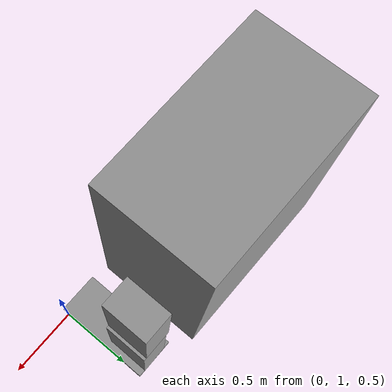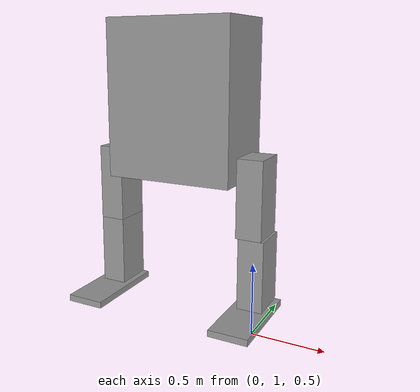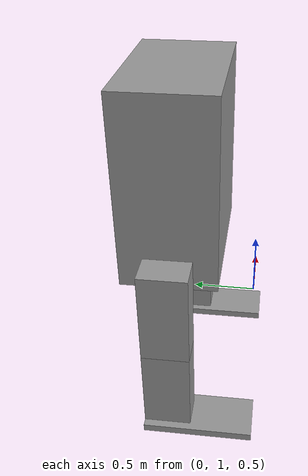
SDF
<?xml version='1.0'?>
<sdf version='1.6'>
  <model name='HumanoidRobot'>
    <link name='link_0'>
      <pose frame=''>-0.773711 1.48908 2.03333 0 -0 0</pose>
      <inertial>
        <mass>1</mass>
        <inertia>
          <ixx>0.166667</ixx>
          <ixy>0</ixy>
          <ixz>0</ixz>
          <iyy>0.166667</iyy>
          <iyz>0</iyz>
          <izz>0.166667</izz>
        </inertia>
        <pose frame=''>0 0 0 0 -0 0</pose>
      </inertial>
      <gravity>1</gravity>
      <self_collide>0</self_collide>
      <kinematic>0</kinematic>
      <visual name='visual'>
        <pose frame=''>0 0 0 0 -0 0</pose>
        <geometry>
          <box>
            <size>1 0.6 1.2</size>
          </box>
        </geometry>
        <material>
          <lighting>1</lighting>
          <script>
            <uri>file://media/materials/scripts/gazebo.material</uri>
            <name>Gazebo/Grey</name>
          </script>
          <shader type='pixel'>
            <normal_map>__default__</normal_map>
          </shader>
          <ambient>0.3 0.3 0.3 1</ambient>
          <diffuse>0.7 0.7 0.7 1</diffuse>
          <specular>0.01 0.01 0.01 1</specular>
          <emissive>0 0 0 1</emissive>
        </material>
        <transparency>0</transparency>
        <cast_shadows>1</cast_shadows>
      </visual>
      <collision name='collision'>
        <laser_retro>0</laser_retro>
        <max_contacts>10</max_contacts>
        <pose frame=''>0 0 0 0 -0 0</pose>
        <geometry>
          <box>
            <size>1 0.6 1.2</size>
          </box>
        </geometry>
        <surface>
          <friction>
            <ode>
              <mu>1</mu>
              <mu2>1</mu2>
              <fdir1>0 0 0</fdir1>
              <slip1>0</slip1>
              <slip2>0</slip2>
            </ode>
            <torsional>
              <coefficient>1</coefficient>
              <patch_radius>0</patch_radius>
              <surface_radius>0</surface_radius>
              <use_patch_radius>1</use_patch_radius>
              <ode>
                <slip>0</slip>
              </ode>
            </torsional>
          </friction>
          <bounce>
            <restitution_coefficient>0</restitution_coefficient>
            <threshold>1e+06</threshold>
          </bounce>
          <contact>
            <collide_without_contact>0</collide_without_contact>
            <collide_without_contact_bitmask>1</collide_without_contact_bitmask>
            <collide_bitmask>1</collide_bitmask>
            <ode>
              <soft_cfm>0</soft_cfm>
              <soft_erp>0.2</soft_erp>
              <kp>1e+13</kp>
              <kd>1</kd>
              <max_vel>0.01</max_vel>
              <min_depth>0</min_depth>
            </ode>
            <bullet>
              <split_impulse>1</split_impulse>
              <split_impulse_penetration_threshold>-0.01</split_impulse_penetration_threshold>
              <soft_cfm>0</soft_cfm>
              <soft_erp>0.2</soft_erp>
              <kp>1e+13</kp>
              <kd>1</kd>
            </bullet>
          </contact>
        </surface>
      </collision>
    </link>
    <link name='link_1'>
      <pose frame=''>-0.173711 1.48908 1.33333 0 -0 0</pose>
      <inertial>
        <mass>1</mass>
        <inertia>
          <ixx>0.166667</ixx>
          <ixy>0</ixy>
          <ixz>0</ixz>
          <iyy>0.166667</iyy>
          <iyz>0</iyz>
          <izz>0.166667</izz>
        </inertia>
        <pose frame=''>0 0 0 0 -0 0</pose>
      </inertial>
      <gravity>1</gravity>
      <self_collide>0</self_collide>
      <kinematic>0</kinematic>
      <visual name='visual'>
        <pose frame=''>0 0 0 0 -0 0</pose>
        <geometry>
          <box>
            <size>0.2 0.3 0.6</size>
          </box>
        </geometry>
        <material>
          <lighting>1</lighting>
          <script>
            <uri>file://media/materials/scripts/gazebo.material</uri>
            <name>Gazebo/Grey</name>
          </script>
          <shader type='pixel'>
            <normal_map>__default__</normal_map>
          </shader>
          <ambient>0.3 0.3 0.3 1</ambient>
          <diffuse>0.7 0.7 0.7 1</diffuse>
          <specular>0.01 0.01 0.01 1</specular>
          <emissive>0 0 0 1</emissive>
        </material>
        <transparency>0</transparency>
        <cast_shadows>1</cast_shadows>
      </visual>
      <collision name='collision'>
        <laser_retro>0</laser_retro>
        <max_contacts>10</max_contacts>
        <pose frame=''>0 0 0 0 -0 0</pose>
        <geometry>
          <box>
            <size>0.2 0.3 0.6</size>
          </box>
        </geometry>
        <surface>
          <friction>
            <ode>
              <mu>1</mu>
              <mu2>1</mu2>
              <fdir1>0 0 0</fdir1>
              <slip1>0</slip1>
              <slip2>0</slip2>
            </ode>
            <torsional>
              <coefficient>1</coefficient>
              <patch_radius>0</patch_radius>
              <surface_radius>0</surface_radius>
              <use_patch_radius>1</use_patch_radius>
              <ode>
                <slip>0</slip>
              </ode>
            </torsional>
          </friction>
          <bounce>
            <restitution_coefficient>0</restitution_coefficient>
            <threshold>1e+06</threshold>
          </bounce>
          <contact>
            <collide_without_contact>0</collide_without_contact>
            <collide_without_contact_bitmask>1</collide_without_contact_bitmask>
            <collide_bitmask>1</collide_bitmask>
            <ode>
              <soft_cfm>0</soft_cfm>
              <soft_erp>0.2</soft_erp>
              <kp>1e+13</kp>
              <kd>1</kd>
              <max_vel>0.01</max_vel>
              <min_depth>0</min_depth>
            </ode>
            <bullet>
              <split_impulse>1</split_impulse>
              <split_impulse_penetration_threshold>-0.01</split_impulse_penetration_threshold>
              <soft_cfm>0</soft_cfm>
              <soft_erp>0.2</soft_erp>
              <kp>1e+13</kp>
              <kd>1</kd>
            </bullet>
          </contact>
        </surface>
      </collision>
    </link>
    <link name='link_1_clone'>
      <pose frame=''>-1.37371 1.48908 1.33333 0 -0 0</pose>
      <inertial>
        <mass>1</mass>
        <inertia>
          <ixx>0.166667</ixx>
          <ixy>0</ixy>
          <ixz>0</ixz>
          <iyy>0.166667</iyy>
          <iyz>0</iyz>
          <izz>0.166667</izz>
        </inertia>
        <pose frame=''>0 0 0 0 -0 0</pose>
      </inertial>
      <self_collide>0</self_collide>
      <kinematic>0</kinematic>
      <visual name='visual'>
        <pose frame=''>0 0 0 0 -0 0</pose>
        <geometry>
          <box>
            <size>0.2 0.3 0.6</size>
          </box>
        </geometry>
        <material>
          <lighting>1</lighting>
          <script>
            <uri>file://media/materials/scripts/gazebo.material</uri>
            <name>Gazebo/Grey</name>
          </script>
          <shader type='pixel'>
            <normal_map>__default__</normal_map>
          </shader>
          <ambient>0.3 0.3 0.3 1</ambient>
          <diffuse>0.7 0.7 0.7 1</diffuse>
          <specular>0.01 0.01 0.01 1</specular>
          <emissive>0 0 0 1</emissive>
        </material>
        <transparency>0</transparency>
        <cast_shadows>1</cast_shadows>
      </visual>
      <collision name='collision'>
        <laser_retro>0</laser_retro>
        <max_contacts>10</max_contacts>
        <pose frame=''>0 0 0 0 -0 0</pose>
        <geometry>
          <box>
            <size>0.2 0.3 0.6</size>
          </box>
        </geometry>
        <surface>
          <friction>
            <ode>
              <mu>1</mu>
              <mu2>1</mu2>
              <fdir1>0 0 0</fdir1>
              <slip1>0</slip1>
              <slip2>0</slip2>
            </ode>
            <torsional>
              <coefficient>1</coefficient>
              <patch_radius>0</patch_radius>
              <surface_radius>0</surface_radius>
              <use_patch_radius>1</use_patch_radius>
              <ode>
                <slip>0</slip>
              </ode>
            </torsional>
          </friction>
          <bounce>
            <restitution_coefficient>0</restitution_coefficient>
            <threshold>1e+06</threshold>
          </bounce>
          <contact>
            <collide_without_contact>0</collide_without_contact>
            <collide_without_contact_bitmask>1</collide_without_contact_bitmask>
            <collide_bitmask>1</collide_bitmask>
            <ode>
              <soft_cfm>0</soft_cfm>
              <soft_erp>0.2</soft_erp>
              <kp>1e+13</kp>
              <kd>1</kd>
              <max_vel>0.01</max_vel>
              <min_depth>0</min_depth>
            </ode>
            <bullet>
              <split_impulse>1</split_impulse>
              <split_impulse_penetration_threshold>-0.01</split_impulse_penetration_threshold>
              <soft_cfm>0</soft_cfm>
              <soft_erp>0.2</soft_erp>
              <kp>1e+13</kp>
              <kd>1</kd>
            </bullet>
          </contact>
        </surface>
      </collision>
    </link>
    <link name='link_1_clone_0'>
      <pose frame=''>-0.15371 1.48908 0.733332 0 -0 0</pose>
      <inertial>
        <mass>1</mass>
        <inertia>
          <ixx>0.166667</ixx>
          <ixy>0</ixy>
          <ixz>0</ixz>
          <iyy>0.166667</iyy>
          <iyz>0</iyz>
          <izz>0.166667</izz>
        </inertia>
        <pose frame=''>0 0 0 0 -0 0</pose>
      </inertial>
      <self_collide>0</self_collide>
      <kinematic>0</kinematic>
      <visual name='visual'>
        <pose frame=''>0 0 0 0 -0 0</pose>
        <geometry>
          <box>
            <size>0.2 0.3 0.6</size>
          </box>
        </geometry>
        <material>
          <lighting>1</lighting>
          <script>
            <uri>file://media/materials/scripts/gazebo.material</uri>
            <name>Gazebo/Grey</name>
          </script>
          <shader type='pixel'>
            <normal_map>__default__</normal_map>
          </shader>
          <ambient>0.3 0.3 0.3 1</ambient>
          <diffuse>0.7 0.7 0.7 1</diffuse>
          <specular>0.01 0.01 0.01 1</specular>
          <emissive>0 0 0 1</emissive>
        </material>
        <transparency>0</transparency>
        <cast_shadows>1</cast_shadows>
      </visual>
      <collision name='collision'>
        <laser_retro>0</laser_retro>
        <max_contacts>10</max_contacts>
        <pose frame=''>0 0 0 0 -0 0</pose>
        <geometry>
          <box>
            <size>0.2 0.3 0.6</size>
          </box>
        </geometry>
        <surface>
          <friction>
            <ode>
              <mu>1</mu>
              <mu2>1</mu2>
              <fdir1>0 0 0</fdir1>
              <slip1>0</slip1>
              <slip2>0</slip2>
            </ode>
            <torsional>
              <coefficient>1</coefficient>
              <patch_radius>0</patch_radius>
              <surface_radius>0</surface_radius>
              <use_patch_radius>1</use_patch_radius>
              <ode>
                <slip>0</slip>
              </ode>
            </torsional>
          </friction>
          <bounce>
            <restitution_coefficient>0</restitution_coefficient>
            <threshold>1e+06</threshold>
          </bounce>
          <contact>
            <collide_without_contact>0</collide_without_contact>
            <collide_without_contact_bitmask>1</collide_without_contact_bitmask>
            <collide_bitmask>1</collide_bitmask>
            <ode>
              <soft_cfm>0</soft_cfm>
              <soft_erp>0.2</soft_erp>
              <kp>1e+13</kp>
              <kd>1</kd>
              <max_vel>0.01</max_vel>
              <min_depth>0</min_depth>
            </ode>
            <bullet>
              <split_impulse>1</split_impulse>
              <split_impulse_penetration_threshold>-0.01</split_impulse_penetration_threshold>
              <soft_cfm>0</soft_cfm>
              <soft_erp>0.2</soft_erp>
              <kp>1e+13</kp>
              <kd>1</kd>
            </bullet>
          </contact>
        </surface>
      </collision>
    </link>
    <link name='link_1_clone_1'>
      <pose frame=''>-1.37371 1.48908 0.733332 0 -0 0</pose>
      <inertial>
        <mass>1</mass>
        <inertia>
          <ixx>0.166667</ixx>
          <ixy>0</ixy>
          <ixz>0</ixz>
          <iyy>0.166667</iyy>
          <iyz>0</iyz>
          <izz>0.166667</izz>
        </inertia>
        <pose frame=''>0 0 0 0 -0 0</pose>
      </inertial>
      <self_collide>0</self_collide>
      <kinematic>0</kinematic>
      <gravity>1</gravity>
      <visual name='visual'>
        <pose frame=''>0 0 0 0 -0 0</pose>
        <geometry>
          <box>
            <size>0.2 0.3 0.6</size>
          </box>
        </geometry>
        <material>
          <lighting>1</lighting>
          <script>
            <uri>file://media/materials/scripts/gazebo.material</uri>
            <name>Gazebo/Grey</name>
          </script>
          <shader type='pixel'>
            <normal_map>__default__</normal_map>
          </shader>
          <ambient>0.3 0.3 0.3 1</ambient>
          <diffuse>0.7 0.7 0.7 1</diffuse>
          <specular>0.01 0.01 0.01 1</specular>
          <emissive>0 0 0 1</emissive>
        </material>
        <transparency>0</transparency>
        <cast_shadows>1</cast_shadows>
      </visual>
      <collision name='collision'>
        <laser_retro>0</laser_retro>
        <max_contacts>10</max_contacts>
        <pose frame=''>0 0 0 0 -0 0</pose>
        <geometry>
          <box>
            <size>0.2 0.3 0.6</size>
          </box>
        </geometry>
        <surface>
          <friction>
            <ode>
              <mu>1</mu>
              <mu2>1</mu2>
              <fdir1>0 0 0</fdir1>
              <slip1>0</slip1>
              <slip2>0</slip2>
            </ode>
            <torsional>
              <coefficient>1</coefficient>
              <patch_radius>0</patch_radius>
              <surface_radius>0</surface_radius>
              <use_patch_radius>1</use_patch_radius>
              <ode>
                <slip>0</slip>
              </ode>
            </torsional>
          </friction>
          <bounce>
            <restitution_coefficient>0</restitution_coefficient>
            <threshold>1e+06</threshold>
          </bounce>
          <contact>
            <collide_without_contact>0</collide_without_contact>
            <collide_without_contact_bitmask>1</collide_without_contact_bitmask>
            <collide_bitmask>1</collide_bitmask>
            <ode>
              <soft_cfm>0</soft_cfm>
              <soft_erp>0.2</soft_erp>
              <kp>1e+13</kp>
              <kd>1</kd>
              <max_vel>0.01</max_vel>
              <min_depth>0</min_depth>
            </ode>
            <bullet>
              <split_impulse>1</split_impulse>
              <split_impulse_penetration_threshold>-0.01</split_impulse_penetration_threshold>
              <soft_cfm>0</soft_cfm>
              <soft_erp>0.2</soft_erp>
              <kp>1e+13</kp>
              <kd>1</kd>
            </bullet>
          </contact>
        </surface>
      </collision>
    </link>
    <link name='link_2'>
      <pose frame=''>-0.15371 1.28908 0.458332 0 -0 0</pose>
      <inertial>
        <mass>1</mass>
        <inertia>
          <ixx>0.166667</ixx>
          <ixy>0</ixy>
          <ixz>0</ixz>
          <iyy>0.166667</iyy>
          <iyz>0</iyz>
          <izz>0.166667</izz>
        </inertia>
        <pose frame=''>0 0 0 0 -0 0</pose>
      </inertial>
      <gravity>1</gravity>
      <self_collide>0</self_collide>
      <kinematic>0</kinematic>
      <visual name='visual'>
        <pose frame=''>0 0 0 0 -0 0</pose>
        <geometry>
          <box>
            <size>0.3 0.7 0.05</size>
          </box>
        </geometry>
        <material>
          <lighting>1</lighting>
          <script>
            <uri>file://media/materials/scripts/gazebo.material</uri>
            <name>Gazebo/Grey</name>
          </script>
          <shader type='pixel'>
            <normal_map>__default__</normal_map>
          </shader>
          <ambient>0.3 0.3 0.3 1</ambient>
          <diffuse>0.7 0.7 0.7 1</diffuse>
          <specular>0.01 0.01 0.01 1</specular>
          <emissive>0 0 0 1</emissive>
        </material>
        <transparency>0</transparency>
        <cast_shadows>1</cast_shadows>
      </visual>
      <collision name='collision'>
        <laser_retro>0</laser_retro>
        <max_contacts>10</max_contacts>
        <pose frame=''>0 0 0 0 -0 0</pose>
        <geometry>
          <box>
            <size>0.3 0.7 0.05</size>
          </box>
        </geometry>
        <surface>
          <friction>
            <ode>
              <mu>1</mu>
              <mu2>1</mu2>
              <fdir1>0 0 0</fdir1>
              <slip1>0</slip1>
              <slip2>0</slip2>
            </ode>
            <torsional>
              <coefficient>1</coefficient>
              <patch_radius>0</patch_radius>
              <surface_radius>0</surface_radius>
              <use_patch_radius>1</use_patch_radius>
              <ode>
                <slip>0</slip>
              </ode>
            </torsional>
          </friction>
          <bounce>
            <restitution_coefficient>0</restitution_coefficient>
            <threshold>1e+06</threshold>
          </bounce>
          <contact>
            <collide_without_contact>0</collide_without_contact>
            <collide_without_contact_bitmask>1</collide_without_contact_bitmask>
            <collide_bitmask>1</collide_bitmask>
            <ode>
              <soft_cfm>0</soft_cfm>
              <soft_erp>0.2</soft_erp>
              <kp>1e+13</kp>
              <kd>1</kd>
              <max_vel>0.01</max_vel>
              <min_depth>0</min_depth>
            </ode>
            <bullet>
              <split_impulse>1</split_impulse>
              <split_impulse_penetration_threshold>-0.01</split_impulse_penetration_threshold>
              <soft_cfm>0</soft_cfm>
              <soft_erp>0.2</soft_erp>
              <kp>1e+13</kp>
              <kd>1</kd>
            </bullet>
          </contact>
        </surface>
      </collision>
    </link>
    <link name='link_2_clone'>
      <pose frame=''>-1.37371 1.28908 0.458332 0 -0 0</pose>
      <inertial>
        <mass>1</mass>
        <inertia>
          <ixx>0.166667</ixx>
          <ixy>0</ixy>
          <ixz>0</ixz>
          <iyy>0.166667</iyy>
          <iyz>0</iyz>
          <izz>0.166667</izz>
        </inertia>
        <pose frame=''>0 0 0 0 -0 0</pose>
      </inertial>
      <self_collide>0</self_collide>
      <kinematic>0</kinematic>
      <visual name='visual'>
        <pose frame=''>0 0 0 0 -0 0</pose>
        <geometry>
          <box>
            <size>0.3 0.7 0.05</size>
          </box>
        </geometry>
        <material>
          <lighting>1</lighting>
          <script>
            <uri>file://media/materials/scripts/gazebo.material</uri>
            <name>Gazebo/Grey</name>
          </script>
          <shader type='pixel'>
            <normal_map>__default__</normal_map>
          </shader>
          <ambient>0.3 0.3 0.3 1</ambient>
          <diffuse>0.7 0.7 0.7 1</diffuse>
          <specular>0.01 0.01 0.01 1</specular>
          <emissive>0 0 0 1</emissive>
        </material>
        <transparency>0</transparency>
        <cast_shadows>1</cast_shadows>
      </visual>
      <collision name='collision'>
        <laser_retro>0</laser_retro>
        <max_contacts>10</max_contacts>
        <pose frame=''>0 0 0 0 -0 0</pose>
        <geometry>
          <box>
            <size>0.3 0.7 0.05</size>
          </box>
        </geometry>
        <surface>
          <friction>
            <ode>
              <mu>1</mu>
              <mu2>1</mu2>
              <fdir1>0 0 0</fdir1>
              <slip1>0</slip1>
              <slip2>0</slip2>
            </ode>
            <torsional>
              <coefficient>1</coefficient>
              <patch_radius>0</patch_radius>
              <surface_radius>0</surface_radius>
              <use_patch_radius>1</use_patch_radius>
              <ode>
                <slip>0</slip>
              </ode>
            </torsional>
          </friction>
          <bounce>
            <restitution_coefficient>0</restitution_coefficient>
            <threshold>1e+06</threshold>
          </bounce>
          <contact>
            <collide_without_contact>0</collide_without_contact>
            <collide_without_contact_bitmask>1</collide_without_contact_bitmask>
            <collide_bitmask>1</collide_bitmask>
            <ode>
              <soft_cfm>0</soft_cfm>
              <soft_erp>0.2</soft_erp>
              <kp>1e+13</kp>
              <kd>1</kd>
              <max_vel>0.01</max_vel>
              <min_depth>0</min_depth>
            </ode>
            <bullet>
              <split_impulse>1</split_impulse>
              <split_impulse_penetration_threshold>-0.01</split_impulse_penetration_threshold>
              <soft_cfm>0</soft_cfm>
              <soft_erp>0.2</soft_erp>
              <kp>1e+13</kp>
              <kd>1</kd>
            </bullet>
          </contact>
        </surface>
      </collision>
    </link>
    <joint name='link_0_JOINT_0' type='revolute'>
      <parent>link_0</parent>
      <child>link_1</child>
      <pose frame=''>0 0 0.2 0 -0 0</pose>
      <axis>
        <xyz>1 0 0</xyz>
        <use_parent_model_frame>0</use_parent_model_frame>
        <limit>
          <lower>-1.79769e+308</lower>
          <upper>1.79769e+308</upper>
          <effort>-1</effort>
          <velocity>-1</velocity>
        </limit>
        <dynamics>
          <spring_reference>0</spring_reference>
          <spring_stiffness>0</spring_stiffness>
          <damping>0</damping>
          <friction>0</friction>
        </dynamics>
      </axis>
      <physics>
        <ode>
          <limit>
            <cfm>0</cfm>
            <erp>0.2</erp>
          </limit>
          <suspension>
            <cfm>0</cfm>
            <erp>0.2</erp>
          </suspension>
        </ode>
      </physics>
    </joint>
    <joint name='link_0_JOINT_1' type='revolute'>
      <parent>link_0</parent>
      <child>link_1_clone</child>
      <pose frame=''>0 0 0.2 0 -0 0</pose>
      <axis>
        <xyz>1 0 0</xyz>
        <use_parent_model_frame>0</use_parent_model_frame>
        <limit>
          <lower>-1.79769e+308</lower>
          <upper>1.79769e+308</upper>
          <effort>-1</effort>
          <velocity>-1</velocity>
        </limit>
        <dynamics>
          <spring_reference>0</spring_reference>
          <spring_stiffness>0</spring_stiffness>
          <damping>0</damping>
        </dynamics>
      </axis>
      <physics>
        <ode>
          <limit>
            <cfm>0</cfm>
            <erp>0.2</erp>
          </limit>
          <suspension>
            <cfm>0</cfm>
            <erp>0.2</erp>
          </suspension>
        </ode>
      </physics>
    </joint>
    <joint name='link_1_JOINT_2' type='revolute'>
      <parent>link_1</parent>
      <child>link_1_clone_0</child>
      <pose frame=''>0 0 0.3 0 -0 0</pose>
      <axis>
        <xyz>1 0 0</xyz>
        <use_parent_model_frame>0</use_parent_model_frame>
        <limit>
          <lower>-1.79769e+308</lower>
          <upper>1.79769e+308</upper>
          <effort>-1</effort>
          <velocity>-1</velocity>
        </limit>
        <dynamics>
          <spring_reference>0</spring_reference>
          <spring_stiffness>0</spring_stiffness>
          <damping>0</damping>
        </dynamics>
      </axis>
      <physics>
        <ode>
          <limit>
            <cfm>0</cfm>
            <erp>0.2</erp>
          </limit>
          <suspension>
            <cfm>0</cfm>
            <erp>0.2</erp>
          </suspension>
        </ode>
      </physics>
    </joint>
    <joint name='link_1_clone_0_JOINT_5' type='revolute'>
      <parent>link_1_clone_0</parent>
      <child>link_2</child>
      <pose frame=''>0 0.1 0 0 -0 0</pose>
      <axis>
        <xyz>1 0 0</xyz>
        <use_parent_model_frame>0</use_parent_model_frame>
        <limit>
          <lower>-1.79769e+308</lower>
          <upper>1.79769e+308</upper>
          <effort>-1</effort>
          <velocity>-1</velocity>
        </limit>
        <dynamics>
          <spring_reference>0</spring_reference>
          <spring_stiffness>0</spring_stiffness>
          <damping>0</damping>
          <friction>0</friction>
        </dynamics>
      </axis>
      <physics>
        <ode>
          <limit>
            <cfm>0</cfm>
            <erp>0.2</erp>
          </limit>
          <suspension>
            <cfm>0</cfm>
            <erp>0.2</erp>
          </suspension>
        </ode>
      </physics>
    </joint>
    <joint name='link_1_clone_1_JOINT_6' type='revolute'>
      <parent>link_1_clone_1</parent>
      <child>link_2_clone</child>
      <pose frame=''>0 0.1 0 0 -0 0</pose>
      <axis>
        <xyz>1 0 0</xyz>
        <use_parent_model_frame>0</use_parent_model_frame>
        <limit>
          <lower>-1.79769e+308</lower>
          <upper>1.79769e+308</upper>
          <effort>-1</effort>
          <velocity>-1</velocity>
        </limit>
        <dynamics>
          <spring_reference>0</spring_reference>
          <spring_stiffness>0</spring_stiffness>
          <damping>0</damping>
          <friction>0</friction>
        </dynamics>
      </axis>
      <physics>
        <ode>
          <limit>
            <cfm>0</cfm>
            <erp>0.2</erp>
          </limit>
          <suspension>
            <cfm>0</cfm>
            <erp>0.2</erp>
          </suspension>
        </ode>
      </physics>
    </joint>
    <joint name='link_1_clone_JOINT_3' type='revolute'>
      <parent>link_1_clone</parent>
      <child>link_1_clone_1</child>
      <pose frame=''>0 0 0.3 0 -0 0</pose>
      <axis>
        <xyz>1 0 0</xyz>
        <use_parent_model_frame>0</use_parent_model_frame>
        <limit>
          <lower>-1.79769e+308</lower>
          <upper>1.79769e+308</upper>
          <effort>-1</effort>
          <velocity>-1</velocity>
        </limit>
        <dynamics>
          <spring_reference>0</spring_reference>
          <spring_stiffness>0</spring_stiffness>
          <damping>0</damping>
        </dynamics>
      </axis>
      <physics>
        <ode>
          <limit>
            <cfm>0</cfm>
            <erp>0.2</erp>
          </limit>
          <suspension>
            <cfm>0</cfm>
            <erp>0.2</erp>
          </suspension>
        </ode>
      </physics>
    </joint>
    <static>0</static>
    <allow_auto_disable>1</allow_auto_disable>
  </model>
</sdf>
